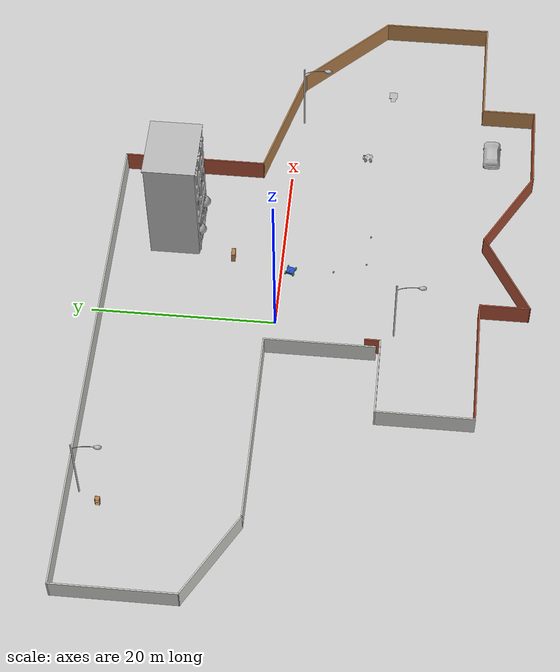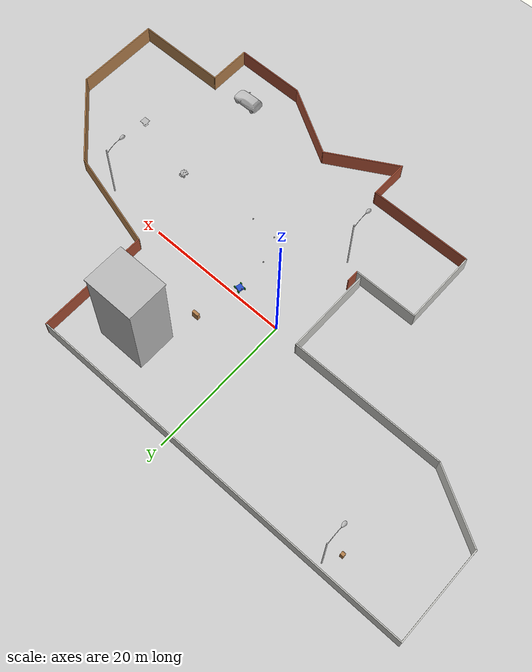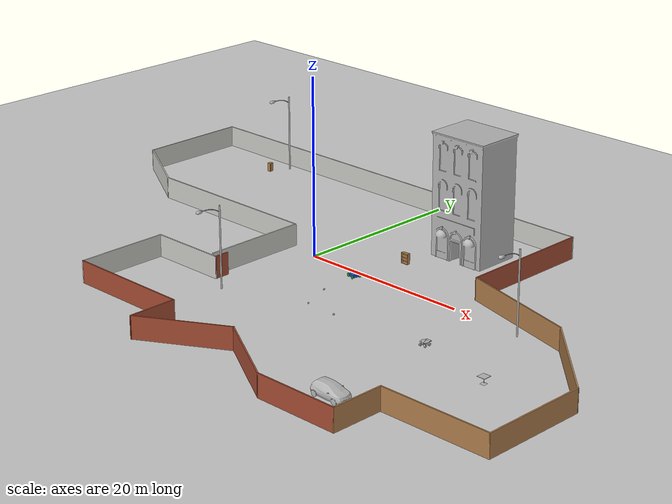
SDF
<sdf version="1.6">
 <world name="default">
  <model name="ground_plane">
   <static>1</static>
   <link name="link">
    <collision name="collision">
     <geometry><plane><normal>0 0 1</normal><size>100 100</size></plane></geometry>
     <surface><friction><ode><mu>100</mu><mu2>50</mu2></ode></friction></surface>
    </collision>
    <visual name="visual">
     <cast_shadows>0</cast_shadows>
     <geometry><plane><normal>0 0 1</normal><size>100 100</size></plane></geometry>
     <material>
      <script><uri>file://media/materials/scripts/gazebo.material</uri><name>Gazebo/Grey</name></script>
     </material>
    </visual>
   </link>
  </model>
  <light name="sun" type="directional">
   <pose>0 0 10 0 -0 0</pose>
   <diffuse>0.8 0.8 0.8 1</diffuse>
   <specular>0.2 0.2 0.2 1</specular>
   <attenuation>
    <range>1000</range>
    <constant>0.9</constant>
    <linear>0.01</linear>
    <quadratic>0.001</quadratic>
   </attenuation>
   <direction>-0.5 0.1 -0.9</direction>
  </light>
  <gravity>0 0 -9.8</gravity>
  <magnetic_field>6e-06 2.3e-05 -4.2e-05</magnetic_field>
  <atmosphere type="adiabatic"/>
  <physics name="default_physics" default="0" type="ode">
   <max_step_size>0.001</max_step_size>
   <real_time_factor>1</real_time_factor>
   <real_time_update_rate>1000</real_time_update_rate>
  </physics>
  <scene><ambient>0.4 0.4 0.4 1</ambient><background>0.7 0.7 0.7 1</background><shadows>1</shadows></scene>
  <spherical_coordinates>
   <surface_model>EARTH_WGS84</surface_model>
   <latitude_deg>0</latitude_deg>
   <longitude_deg>0</longitude_deg>
   <elevation>0</elevation>
   <heading_deg>0</heading_deg>
  </spherical_coordinates>
  <model name="my_robot">
   <link name="robot_footprint">
    <inertial>
     <pose>0.02764 0 0.034162 0 -0 0</pose>
     <mass>16.1</mass>
     <inertia>
      <ixx>0.456216</ixx>
      <ixy>0</ixy>
      <ixz>-0.2073</ixz>
      <iyy>0.624168</iyy>
      <iyz>0</iyz>
      <izz>0.367954</izz>
     </inertia>
    </inertial>
    <collision name="robot_footprint_fixed_joint_lump__chassis_collision_collision">
     <geometry><box><size>0.8 0.8 0.3</size></box></geometry>
    </collision>
    <collision name="robot_footprint_fixed_joint_lump__sensor_box_collision_collision_1">
     <pose>0.4 0 0.5 0 -0 0</pose>
     <geometry><box><size>0.1 0.1 0.1</size></box></geometry>
    </collision>
    <collision name="robot_footprint_fixed_joint_lump__camera_collision_collision_2">
     <pose>0.45 0 0.5 0 -0 0</pose>
     <geometry><box><size>0.05 0.05 0.05</size></box></geometry>
    </collision>
    <collision name="robot_footprint_fixed_joint_lump__hokuyo_collision_collision_3">
     <pose>0.4 0 0.55 0 -0 0</pose>
     <geometry><box><size>0.1 0.1 0.1</size></box></geometry>
    </collision>
    <visual name="robot_footprint_fixed_joint_lump__chassis_visual_visual">
     <geometry><box><size>0.8 0.8 0.3</size></box></geometry>
     <material>
      <script><name>Gazebo/Blue</name><uri>file://media/materials/scripts/gazebo.material</uri></script>
     </material>
    </visual>
    <visual name="robot_footprint_fixed_joint_lump__sensor_box_visual_visual_1">
     <pose>0.4 0 0.5 0 -0 0</pose>
     <geometry><box><size>0.1 0.1 0.1</size></box></geometry>
    </visual>
    <visual name="robot_footprint_fixed_joint_lump__camera_visual_visual_2">
     <pose>0.45 0 0.5 0 -0 0</pose>
     <geometry><box><size>0.05 0.05 0.05</size></box></geometry>
     <material>
      <script><name>Gazebo/Red</name><uri>file://media/materials/scripts/gazebo.material</uri></script>
     </material>
    </visual>
    <visual name="robot_footprint_fixed_joint_lump__hokuyo_visual_visual_3">
     <pose>0.4 0 0.55 0 -0 0</pose>
     <geometry>
      <mesh><scale>1 1 1</scale><uri>/home/workspace/catkin_ws/src/my_robot/meshes/hokuyo.dae</uri></mesh>
     </geometry>
     <material><script><uri>__default__</uri><name>__default__</name></script></material>
    </visual>
    <sensor name="camera1" type="camera">
     <update_rate>30</update_rate>
     <camera name="head">
      <horizontal_fov>1.39626</horizontal_fov>
      <image><width>800</width><height>800</height><format>R8G8B8</format></image>
      <clip><near>0.02</near><far>300</far></clip>
     </camera>
     <plugin name="camera_controller" filename="libgazebo_ros_camera.so">
      <alwaysOn>1</alwaysOn>
      <updateRate>0.0</updateRate>
      <cameraName>camera</cameraName>
      <imageTopicName>rgb/image_raw</imageTopicName>
      <cameraInfoTopicName>rgb/camera_info</cameraInfoTopicName>
      <frameName>camera</frameName>
      <hackBaseline>0.07</hackBaseline>
      <distortionK1>0.0</distortionK1>
      <distortionK2>0.0</distortionK2>
      <distortionK3>0.0</distortionK3>
      <distortionT1>0.0</distortionT1>
      <distortionT2>0.0</distortionT2>
      <robotNamespace>/</robotNamespace>
     </plugin>
     <pose>0.45 0 0.5 0 -0 0</pose>
    </sensor>
    <sensor name="head_hokuyo_sensor" type="ray">
     <visualize>0</visualize>
     <update_rate>40</update_rate>
     <ray>
      <scan>
       <horizontal>
        <samples>720</samples>
        <resolution>1</resolution>
        <min_angle>-1</min_angle>
        <max_angle>1</max_angle>
       </horizontal>
       <vertical><samples>1</samples><min_angle>0</min_angle><max_angle>0</max_angle></vertical>
      </scan>
      <range><min>0.1</min><max>30</max><resolution>0.01</resolution></range>
      <noise><type>gaussian</type><mean>0</mean><stddev>0.01</stddev></noise>
     </ray>
     <plugin name="gazebo_ros_head_hokuyo_controller" filename="libgazebo_ros_laser.so">
      <topicName>/scan</topicName>
      <frameName>hokuyo</frameName>
      <robotNamespace>/</robotNamespace>
     </plugin>
     <pose>0.4 0 0.55 0 -0 0</pose>
    </sensor>
   </link>
   <link name="front_left_wheel">
    <pose>0.4 0.45 0 0 -0 0</pose>
    <inertial>
     <mass>5</mass>
     <inertia><ixx>0.1</ixx><ixy>0</ixy><ixz>0</ixz><iyy>0.1</iyy><iyz>0</iyz><izz>0.1</izz></inertia>
    </inertial>
    <collision name="front_left_wheel_collision_collision">
     <pose>0 0 0 3.14159 1.57079 -1.57089</pose>
     <geometry><cylinder><length>0.1</length><radius>0.2</radius></cylinder></geometry>
    </collision>
    <visual name="front_left_wheel_visual_visual">
     <pose>0 0 0 3.14159 1.57079 -1.57089</pose>
     <geometry><cylinder><length>0.1</length><radius>0.2</radius></cylinder></geometry>
     <material>
      <script><name>Gazebo/Green</name><uri>file://media/materials/scripts/gazebo.material</uri></script>
     </material>
    </visual>
   </link>
   <joint name="front_left_wheel_hinge" type="revolute">
    <child>front_left_wheel</child>
    <parent>robot_footprint</parent>
    <axis>
     <xyz>0 1 0</xyz>
     <limit><lower>-1e+16</lower><upper>1e+16</upper></limit>
     <dynamics>
      <damping>1</damping>
      <friction>1</friction>
      <spring_reference>0</spring_reference>
      <spring_stiffness>0</spring_stiffness>
     </dynamics>
     <use_parent_model_frame>1</use_parent_model_frame>
    </axis>
   </joint>
   <link name="front_right_wheel">
    <pose>0.4 -0.45 0 0 -0 0</pose>
    <inertial>
     <mass>5</mass>
     <inertia><ixx>0.1</ixx><ixy>0</ixy><ixz>0</ixz><iyy>0.1</iyy><iyz>0</iyz><izz>0.1</izz></inertia>
    </inertial>
    <collision name="front_right_wheel_collision_collision">
     <pose>0 0 0 3.14159 1.57079 -1.57089</pose>
     <geometry><cylinder><length>0.1</length><radius>0.2</radius></cylinder></geometry>
    </collision>
    <visual name="front_right_wheel_visual_visual">
     <pose>0 0 0 3.14159 1.57079 -1.57089</pose>
     <geometry><cylinder><length>0.1</length><radius>0.2</radius></cylinder></geometry>
     <material>
      <script><name>Gazebo/Green</name><uri>file://media/materials/scripts/gazebo.material</uri></script>
     </material>
    </visual>
   </link>
   <joint name="front_right_wheel_hinge" type="revolute">
    <child>front_right_wheel</child>
    <parent>robot_footprint</parent>
    <axis>
     <xyz>0 1 0</xyz>
     <limit><lower>-1e+16</lower><upper>1e+16</upper></limit>
     <dynamics>
      <damping>1</damping>
      <friction>1</friction>
      <spring_reference>0</spring_reference>
      <spring_stiffness>0</spring_stiffness>
     </dynamics>
     <use_parent_model_frame>1</use_parent_model_frame>
    </axis>
   </joint>
   <link name="rear_left_wheel">
    <pose>-0.4 0.45 0 0 -0 0</pose>
    <inertial>
     <mass>5</mass>
     <inertia><ixx>0.1</ixx><ixy>0</ixy><ixz>0</ixz><iyy>0.1</iyy><iyz>0</iyz><izz>0.1</izz></inertia>
    </inertial>
    <collision name="rear_left_wheel_collision_collision">
     <pose>0 0 0 3.14159 1.57079 -1.57089</pose>
     <geometry><cylinder><length>0.1</length><radius>0.2</radius></cylinder></geometry>
    </collision>
    <visual name="rear_left_wheel_visual_visual">
     <pose>0 0 0 3.14159 1.57079 -1.57089</pose>
     <geometry><cylinder><length>0.1</length><radius>0.2</radius></cylinder></geometry>
     <material>
      <script><name>Gazebo/Green</name><uri>file://media/materials/scripts/gazebo.material</uri></script>
     </material>
    </visual>
   </link>
   <joint name="rear_left_wheel_hinge" type="revolute">
    <child>rear_left_wheel</child>
    <parent>robot_footprint</parent>
    <axis>
     <xyz>0 1 0</xyz>
     <limit><lower>-1e+16</lower><upper>1e+16</upper></limit>
     <dynamics>
      <damping>1</damping>
      <friction>1</friction>
      <spring_reference>0</spring_reference>
      <spring_stiffness>0</spring_stiffness>
     </dynamics>
     <use_parent_model_frame>1</use_parent_model_frame>
    </axis>
   </joint>
   <link name="rear_right_wheel">
    <pose>-0.4 -0.45 0 0 -0 0</pose>
    <inertial>
     <mass>5</mass>
     <inertia><ixx>0.1</ixx><ixy>0</ixy><ixz>0</ixz><iyy>0.1</iyy><iyz>0</iyz><izz>0.1</izz></inertia>
    </inertial>
    <collision name="rear_right_wheel_collision_collision">
     <pose>0 0 0 3.14159 1.57079 -1.57089</pose>
     <geometry><cylinder><length>0.1</length><radius>0.2</radius></cylinder></geometry>
    </collision>
    <visual name="rear_right_wheel_visual_visual">
     <pose>0 0 0 3.14159 1.57079 -1.57089</pose>
     <geometry><cylinder><length>0.1</length><radius>0.2</radius></cylinder></geometry>
     <material>
      <script><name>Gazebo/Green</name><uri>file://media/materials/scripts/gazebo.material</uri></script>
     </material>
    </visual>
   </link>
   <joint name="rear_right_wheel_hinge" type="revolute">
    <child>rear_right_wheel</child>
    <parent>robot_footprint</parent>
    <axis>
     <xyz>0 1 0</xyz>
     <limit><lower>-1e+16</lower><upper>1e+16</upper></limit>
     <dynamics>
      <damping>1</damping>
      <friction>1</friction>
      <spring_reference>0</spring_reference>
      <spring_stiffness>0</spring_stiffness>
     </dynamics>
     <use_parent_model_frame>1</use_parent_model_frame>
    </axis>
   </joint>
   <static>0</static>
   <plugin name="skid_steer_drive_controller" filename="libgazebo_ros_skid_steer_drive.so">
    <updateRate>10.0</updateRate>
    <robotNamespace>/</robotNamespace>
    <leftFrontJoint>front_left_wheel_hinge</leftFrontJoint>
    <rightFrontJoint>front_right_wheel_hinge</rightFrontJoint>
    <leftRearJoint>rear_left_wheel_hinge</leftRearJoint>
    <rightRearJoint>rear_right_wheel_hinge</rightRearJoint>
    <wheelSeparation>0.9</wheelSeparation>
    <wheelDiameter>0.4</wheelDiameter>
    <robotBaseFrame>robot_footprint</robotBaseFrame>
    <torque>100</torque>
    <topicName>cmd_vel</topicName>
    <broadcastTF>0</broadcastTF>
   </plugin>
   <pose>6.99353 -1.03089 0.200003 1e-06 -1e-06 2.88128</pose>
  </model>
  <model name="model1">
   <model name="Untitled">
    <pose>-6.69838 -1.37299 0 0 -0 0</pose>
    <link name="Wall_0">
     <collision name="Wall_0_Collision">
      <geometry><box><size>1.75 0.15 2.5</size></box></geometry>
      <pose>0 0 1.25 0 -0 0</pose>
     </collision>
     <visual name="Wall_0_Visual">
      <pose>0 0 1.25 0 -0 0</pose>
      <geometry><box><size>1.75 0.15 2.5</size></box></geometry>
      <material>
       <script><uri>file://media/materials/scripts/gazebo.material</uri><name>Gazebo/Bricks</name></script>
       <ambient>1 1 1 1</ambient>
      </material>
      <meta><layer>0</layer></meta>
     </visual>
     <pose>-7.2256 -6.50411 0 0 -0 -1.5708</pose>
    </link>
    <link name="Wall_1">
     <collision name="Wall_1_Collision">
      <geometry><box><size>9 0.15 2.5</size></box></geometry>
      <pose>0 0 1.25 0 -0 0</pose>
     </collision>
     <visual name="Wall_1_Visual">
      <pose>0 0 1.25 0 -0 0</pose>
      <geometry><box><size>9 0.15 2.5</size></box></geometry>
      <material>
       <script><uri>file://media/materials/scripts/gazebo.material</uri><name>Gazebo/CeilingTiled</name></script>
       <ambient>1 0.764706 0.305882 1</ambient>
      </material>
      <meta><layer>0</layer></meta>
     </visual>
     <pose>-11.6506 -7.30411 0 0 -0 3.14159</pose>
    </link>
    <link name="Wall_10">
     <collision name="Wall_10_Collision">
      <geometry><box><size>12 0.15 2.5</size></box></geometry>
      <pose>0 0 1.25 0 -0 0</pose>
     </collision>
     <visual name="Wall_10_Visual">
      <pose>0 0 1.25 0 -0 0</pose>
      <geometry><box><size>12 0.15 2.5</size></box></geometry>
      <material>
       <script><uri>file://media/materials/scripts/gazebo.material</uri><name>Gazebo/Wood</name></script>
       <ambient>1 1 1 1</ambient>
      </material>
      <meta><layer>0</layer></meta>
     </visual>
     <pose>38.4011 -11.2291 0 0 -0 1.5708</pose>
    </link>
    <link name="Wall_11">
     <collision name="Wall_11_Collision">
      <geometry><box><size>13 0.15 2.5</size></box></geometry>
      <pose>0 0 1.25 0 -0 0</pose>
     </collision>
     <visual name="Wall_11_Visual">
      <pose>0 0 1.25 0 -0 0</pose>
      <geometry><box><size>13 0.15 2.5</size></box></geometry>
      <material>
       <script><uri>file://media/materials/scripts/gazebo.material</uri><name>Gazebo/Wood</name></script>
       <ambient>1 1 1 1</ambient>
      </material>
      <meta><layer>0</layer></meta>
     </visual>
     <pose>33.858 -0.760948 0 0 -0 2.35619</pose>
    </link>
    <link name="Wall_12">
     <collision name="Wall_12_Collision">
      <geometry><box><size>14.25 0.15 2.5</size></box></geometry>
      <pose>0 0 1.25 0 -0 0</pose>
     </collision>
     <visual name="Wall_12_Visual">
      <pose>0 0 1.25 0 -0 0</pose>
      <geometry><box><size>14.25 0.15 2.5</size></box></geometry>
      <material>
       <script><uri>file://media/materials/scripts/gazebo.material</uri><name>Gazebo/Wood</name></script>
       <ambient>1 1 1 1</ambient>
      </material>
      <meta><layer>0</layer></meta>
     </visual>
     <pose>22.505 5.60689 0 0 -0 2.87979</pose>
    </link>
    <link name="Wall_13">
     <collision name="Wall_13_Collision">
      <geometry><box><size>15.75 0.15 2.5</size></box></geometry>
      <pose>0 0 1.25 0 -0 0</pose>
     </collision>
     <visual name="Wall_13_Visual">
      <pose>0 0 1.25 0 -0 0</pose>
      <geometry><box><size>15.75 0.15 2.5</size></box></geometry>
      <material>
       <script><uri>file://media/materials/scripts/gazebo.material</uri><name>Gazebo/Bricks</name></script>
       <ambient>1 1 1 1</ambient>
      </material>
      <meta><layer>0</layer></meta>
     </visual>
     <pose>15.6953 15.2316 0 0 -0 1.5708</pose>
    </link>
    <link name="Wall_14">
     <collision name="Wall_14_Collision">
      <geometry><box><size>54.25 0.15 2.5</size></box></geometry>
      <pose>0 0 1.25 0 -0 0</pose>
     </collision>
     <visual name="Wall_14_Visual">
      <pose>0 0 1.25 0 -0 0</pose>
      <geometry><box><size>54.25 0.15 2.5</size></box></geometry>
      <material>
       <script><uri>file://media/materials/scripts/gazebo.material</uri><name>Gazebo/CeilingTiled</name></script>
       <ambient>1 0.764706 0.305882 1</ambient>
      </material>
      <meta><layer>0</layer></meta>
     </visual>
     <pose>-11.3547 23.0316 0 0 -0 3.14159</pose>
    </link>
    <link name="Wall_15">
     <collision name="Wall_15_Collision">
      <geometry><box><size>13 0.15 2.5</size></box></geometry>
      <pose>0 0 1.25 0 -0 0</pose>
     </collision>
     <visual name="Wall_15_Visual">
      <pose>0 0 1.25 0 -0 0</pose>
      <geometry><box><size>13 0.15 2.5</size></box></geometry>
      <material>
       <script><uri>file://media/materials/scripts/gazebo.material</uri><name>Gazebo/CeilingTiled</name></script>
       <ambient>1 0.764706 0.305882 1</ambient>
      </material>
      <meta><layer>0</layer></meta>
     </visual>
     <pose>-38.4047 16.6066 0 0 -0 -1.5708</pose>
    </link>
    <link name="Wall_16">
     <collision name="Wall_16_Collision">
      <geometry><box><size>10.5 0.15 2.5</size></box></geometry>
      <pose>0 0 1.25 0 -0 0</pose>
     </collision>
     <visual name="Wall_16_Visual">
      <pose>0 0 1.25 0 -0 0</pose>
      <geometry><box><size>10.5 0.15 2.5</size></box></geometry>
      <material>
       <script><uri>file://media/materials/scripts/gazebo.material</uri><name>Gazebo/CeilingTiled</name></script>
       <ambient>1 0.764706 0.305882 1</ambient>
      </material>
      <meta><layer>0</layer></meta>
     </visual>
     <pose>-33.9231 7.59406 0 0 -0 -0.523599</pose>
    </link>
    <link name="Wall_17">
     <collision name="Wall_17_Collision">
      <geometry><box><size>21.5 0.15 2.5</size></box></geometry>
      <pose>0 0 1.25 0 -0 0</pose>
     </collision>
     <visual name="Wall_17_Visual">
      <pose>0 0 1.25 0 -0 0</pose>
      <geometry><box><size>21.5 0.15 2.5</size></box></geometry>
      <material>
       <script><uri>file://media/materials/scripts/gazebo.material</uri><name>Gazebo/CeilingTiled</name></script>
       <ambient>1 0.764706 0.305882 1</ambient>
      </material>
      <meta><layer>0</layer></meta>
     </visual>
     <pose>-18.7664 5.00656 0 0 -0 0</pose>
    </link>
    <link name="Wall_18">
     <collision name="Wall_18_Collision">
      <geometry><box><size>12 0.15 2.5</size></box></geometry>
      <pose>0 0 1.25 0 -0 0</pose>
     </collision>
     <visual name="Wall_18_Visual">
      <pose>0 0 1.25 0 -0 0</pose>
      <geometry><box><size>12 0.15 2.5</size></box></geometry>
      <material>
       <script><uri>file://media/materials/scripts/gazebo.material</uri><name>Gazebo/CeilingTiled</name></script>
       <ambient>1 0.764706 0.305882 1</ambient>
      </material>
      <meta><layer>0</layer></meta>
     </visual>
     <pose>-8.09139 -0.918439 0 0 -0 -1.5708</pose>
    </link>
    <link name="Wall_2">
     <collision name="Wall_2_Collision">
      <geometry><box><size>10.5 0.15 2.5</size></box></geometry>
      <pose>0 0 1.25 0 -0 0</pose>
     </collision>
     <visual name="Wall_2_Visual">
      <pose>0 0 1.25 0 -0 0</pose>
      <geometry><box><size>10.5 0.15 2.5</size></box></geometry>
      <material>
       <script><uri>file://media/materials/scripts/gazebo.material</uri><name>Gazebo/CeilingTiled</name></script>
       <ambient>1 0.764706 0.305882 1</ambient>
      </material>
      <meta><layer>0</layer></meta>
     </visual>
     <pose>-16.0756 -12.4791 0 0 -0 -1.5708</pose>
    </link>
    <link name="Wall_3">
     <collision name="Wall_3_Collision">
      <geometry><box><size>14.5 0.15 2.5</size></box></geometry>
      <pose>0 0 1.25 0 -0 0</pose>
     </collision>
     <visual name="Wall_3_Visual">
      <pose>0 0 1.25 0 -0 0</pose>
      <geometry><box><size>14.5 0.15 2.5</size></box></geometry>
      <material>
       <script><uri>file://media/materials/scripts/gazebo.material</uri><name>Gazebo/Bricks</name></script>
       <ambient>1 1 1 1</ambient>
      </material>
      <meta><layer>0</layer></meta>
     </visual>
     <pose>-8.9006 -17.6541 0 0 -0 0</pose>
    </link>
    <link name="Wall_4">
     <collision name="Wall_4_Collision">
      <geometry><box><size>5.5 0.15 2.5</size></box></geometry>
      <pose>0 0 1.25 0 -0 0</pose>
     </collision>
     <visual name="Wall_4_Visual">
      <pose>0 0 1.25 0 -0 0</pose>
      <geometry><box><size>5.5 0.15 2.5</size></box></geometry>
      <material>
       <script><uri>file://media/materials/scripts/gazebo.material</uri><name>Gazebo/Bricks</name></script>
       <ambient>1 1 1 1</ambient>
      </material>
      <meta><layer>0</layer></meta>
     </visual>
     <pose>-1.7256 -20.3291 0 0 -0 -1.5708</pose>
    </link>
    <link name="Wall_5">
     <collision name="Wall_5_Collision">
      <geometry><box><size>10.5 0.15 2.5</size></box></geometry>
      <pose>0 0 1.25 0 -0 0</pose>
     </collision>
     <visual name="Wall_5_Visual">
      <pose>0 0 1.25 0 -0 0</pose>
      <geometry><box><size>10.5 0.15 2.5</size></box></geometry>
      <material>
       <script><uri>file://media/materials/scripts/gazebo.material</uri><name>Gazebo/Bricks</name></script>
       <ambient>1 1 1 1</ambient>
      </material>
      <meta><layer>0</layer></meta>
     </visual>
     <pose>2.75608 -20.4166 0 0 -0 0.523599</pose>
    </link>
    <link name="Wall_6">
     <collision name="Wall_6_Collision">
      <geometry><box><size>10.5 0.15 2.5</size></box></geometry>
      <pose>0 0 1.25 0 -0 0</pose>
     </collision>
     <visual name="Wall_6_Visual">
      <pose>0 0 1.25 0 -0 0</pose>
      <geometry><box><size>10.5 0.15 2.5</size></box></geometry>
      <material>
       <script><uri>file://media/materials/scripts/gazebo.material</uri><name>Gazebo/Bricks</name></script>
       <ambient>1 1 1 1</ambient>
      </material>
      <meta><layer>0</layer></meta>
     </visual>
     <pose>11.7194 -20.4166 0 0 -0 -0.523599</pose>
    </link>
    <link name="Wall_7">
     <collision name="Wall_7_Collision">
      <geometry><box><size>9.75 0.15 2.5</size></box></geometry>
      <pose>0 0 1.25 0 -0 0</pose>
     </collision>
     <visual name="Wall_7_Visual">
      <pose>0 0 1.25 0 -0 0</pose>
      <geometry><box><size>9.75 0.15 2.5</size></box></geometry>
      <material>
       <script><uri>file://media/materials/scripts/gazebo.material</uri><name>Gazebo/Bricks</name></script>
       <ambient>1 0.764706 0.305882 1</ambient>
      </material>
      <meta><layer>0</layer></meta>
     </visual>
     <pose>21.0011 -23.0041 0 0 -0 0</pose>
    </link>
    <link name="Wall_8">
     <collision name="Wall_8_Collision">
      <geometry><box><size>6 0.15 2.5</size></box></geometry>
      <pose>0 0 1.25 0 -0 0</pose>
     </collision>
     <visual name="Wall_8_Visual">
      <pose>0 0 1.25 0 -0 0</pose>
      <geometry><box><size>6 0.15 2.5</size></box></geometry>
      <material>
       <script><uri>file://media/materials/scripts/gazebo.material</uri><name>Gazebo/Wood</name></script>
       <ambient>1 0.764706 0.305882 1</ambient>
      </material>
      <meta><layer>0</layer></meta>
     </visual>
     <pose>25.8011 -20.0791 0 0 -0 1.5708</pose>
    </link>
    <link name="Wall_9">
     <collision name="Wall_9_Collision">
      <geometry><box><size>12.75 0.15 2.5</size></box></geometry>
      <pose>0 0 1.25 0 -0 0</pose>
     </collision>
     <visual name="Wall_9_Visual">
      <pose>0 0 1.25 0 -0 0</pose>
      <geometry><box><size>12.75 0.15 2.5</size></box></geometry>
      <material>
       <script><uri>file://media/materials/scripts/gazebo.material</uri><name>Gazebo/Wood</name></script>
       <ambient>1 1 1 1</ambient>
      </material>
      <meta><layer>0</layer></meta>
     </visual>
     <pose>32.1011 -17.1541 0 0 -0 0</pose>
    </link>
    <static>1</static>
   </model>
   <model name="bookshelf">
    <static>1</static>
    <link name="link">
     <inertial><mass>1</mass></inertial>
     <collision name="back">
      <pose>0 0.005 0.6 0 -0 0</pose>
      <geometry><box><size>0.9 0.01 1.2</size></box></geometry>
     </collision>
     <visual name="visual1">
      <pose>0 0.005 0.6 0 -0 0</pose>
      <geometry><box><size>0.9 0.01 1.2</size></box></geometry>
      <material>
       <script><uri>file://media/materials/scripts/gazebo.material</uri><name>Gazebo/Wood</name></script>
      </material>
     </visual>
     <collision name="left_side">
      <pose>0.45 -0.195 0.6 0 -0 0</pose>
      <geometry><box><size>0.02 0.4 1.2</size></box></geometry>
     </collision>
     <visual name="visual2">
      <pose>0.45 -0.195 0.6 0 -0 0</pose>
      <geometry><box><size>0.02 0.4 1.2</size></box></geometry>
      <material>
       <script><uri>file://media/materials/scripts/gazebo.material</uri><name>Gazebo/Wood</name></script>
      </material>
     </visual>
     <collision name="right_side">
      <pose>-0.45 -0.195 0.6 0 -0 0</pose>
      <geometry><box><size>0.02 0.4 1.2</size></box></geometry>
     </collision>
     <visual name="visual3">
      <pose>-0.45 -0.195 0.6 0 -0 0</pose>
      <geometry><box><size>0.02 0.4 1.2</size></box></geometry>
      <material>
       <script><uri>file://media/materials/scripts/gazebo.material</uri><name>Gazebo/Wood</name></script>
      </material>
     </visual>
     <collision name="bottom">
      <pose>0 -0.195 0.03 0 -0 0</pose>
      <geometry><box><size>0.88 0.4 0.06</size></box></geometry>
     </collision>
     <visual name="visual4">
      <pose>0 -0.195 0.03 0 -0 0</pose>
      <geometry><box><size>0.88 0.4 0.06</size></box></geometry>
      <material>
       <script><uri>file://media/materials/scripts/gazebo.material</uri><name>Gazebo/Wood</name></script>
      </material>
     </visual>
     <collision name="top">
      <pose>0 -0.195 1.19 0 -0 0</pose>
      <geometry><box><size>0.88 0.4 0.02</size></box></geometry>
     </collision>
     <visual name="visual5">
      <pose>0 -0.195 1.19 0 -0 0</pose>
      <geometry><box><size>0.88 0.4 0.02</size></box></geometry>
      <material>
       <script><uri>file://media/materials/scripts/gazebo.material</uri><name>Gazebo/Wood</name></script>
      </material>
     </visual>
     <collision name="low_shelf">
      <pose>0 -0.195 0.43 0 -0 0</pose>
      <geometry><box><size>0.88 0.4 0.02</size></box></geometry>
     </collision>
     <visual name="visual6">
      <pose>0 -0.195 0.43 0 -0 0</pose>
      <geometry><box><size>0.88 0.4 0.02</size></box></geometry>
      <material>
       <script><uri>file://media/materials/scripts/gazebo.material</uri><name>Gazebo/Wood</name></script>
      </material>
     </visual>
     <collision name="high_shelf">
      <pose>0 -0.195 0.8 0 -0 0</pose>
      <geometry><box><size>0.88 0.4 0.02</size></box></geometry>
     </collision>
     <visual name="visual7">
      <pose>0 -0.195 0.8 0 -0 0</pose>
      <geometry><box><size>0.88 0.4 0.02</size></box></geometry>
      <material>
       <script><uri>file://media/materials/scripts/gazebo.material</uri><name>Gazebo/Wood</name></script>
      </material>
     </visual>
    </link>
    <pose>-2.7321 8.40925 0 0 -0 0</pose>
   </model>
   <model name="cabinet">
    <static>1</static>
    <link name="cabinet_bottom_plate">
     <inertial>
      <pose>0 0 -1 0 -0 0</pose>
      <inertia><ixx>2.05</ixx><ixy>0</ixy><ixz>0</ixz><iyy>2.05</iyy><iyz>0</iyz><izz>2.05</izz></inertia>
      <mass>25</mass>
     </inertial>
     <collision name="cabinet_bottom_plate_geom">
      <pose>0 0 0.01 0 -0 0</pose>
      <geometry><box><size>0.45 0.45 0.02</size></box></geometry>
     </collision>
     <visual name="cabinet_bottom_plate_geom_visual">
      <pose>0 0 0.01 0 -0 0</pose>
      <geometry><box><size>0.45 0.45 0.02</size></box></geometry>
      <material>
       <script><uri>file://media/materials/scripts/gazebo.material</uri><name>Gazebo/Wood</name></script>
      </material>
     </visual>
     <collision name="cabinet_bottom_plate_geom_cabinet_back_plate">
      <pose>0.235 0 0.51 0 -0 0</pose>
      <geometry><box><size>0.02 0.45 1.02</size></box></geometry>
     </collision>
     <visual name="cabinet_bottom_plate_geom_cabinet_back_plate_visual">
      <pose>0.235 0 0.51 0 -0 0</pose>
      <geometry><box><size>0.02 0.45 1.02</size></box></geometry>
      <material>
       <script><uri>file://media/materials/scripts/gazebo.material</uri><name>Gazebo/Wood</name></script>
      </material>
     </visual>
     <collision name="cabinet_bottom_plate_geom_cabinet_left_plate">
      <pose>0 0.235 0.51 0 -0 0</pose>
      <geometry><box><size>0.45 0.02 1.02</size></box></geometry>
     </collision>
     <visual name="cabinet_bottom_plate_geom_cabinet_left_plate_visual">
      <pose>0 0.235 0.51 0 -0 0</pose>
      <geometry><box><size>0.45 0.02 1.02</size></box></geometry>
      <material>
       <script><uri>file://media/materials/scripts/gazebo.material</uri><name>Gazebo/Wood</name></script>
      </material>
     </visual>
     <collision name="cabinet_bottom_plate_geom_cabinet_middle_plate">
      <pose>0 0 0.51 0 -0 0</pose>
      <geometry><box><size>0.45 0.45 0.02</size></box></geometry>
     </collision>
     <visual name="cabinet_bottom_plate_geom_cabinet_middle_plate_visual">
      <pose>0 0 0.51 0 -0 0</pose>
      <geometry><box><size>0.45 0.45 0.02</size></box></geometry>
      <material>
       <script><uri>file://media/materials/scripts/gazebo.material</uri><name>Gazebo/Wood</name></script>
      </material>
     </visual>
     <collision name="cabinet_bottom_plate_geom_cabinet_right_plate">
      <pose>0 -0.235 0.51 0 -0 0</pose>
      <geometry><box><size>0.45 0.02 1.02</size></box></geometry>
     </collision>
     <visual name="cabinet_bottom_plate_geom_cabinet_right_plate_visual">
      <pose>0 -0.235 0.51 0 -0 0</pose>
      <geometry><box><size>0.45 0.02 1.02</size></box></geometry>
      <material>
       <script><uri>file://media/materials/scripts/gazebo.material</uri><name>Gazebo/Wood</name></script>
      </material>
     </visual>
     <collision name="cabinet_bottom_plate_geom_cabinet_top_plate">
      <pose>0 0 1.01 0 -0 0</pose>
      <geometry><box><size>0.45 0.45 0.02</size></box></geometry>
     </collision>
     <visual name="cabinet_bottom_plate_geom_cabinet_top_plate_visual">
      <pose>0 0 1.01 0 -0 0</pose>
      <geometry><box><size>0.45 0.45 0.02</size></box></geometry>
      <material>
       <script><uri>file://media/materials/scripts/gazebo.material</uri><name>Gazebo/Wood</name></script>
      </material>
     </visual>
    </link>
    <pose>-34.6067 18.4549 0 0 -0 0</pose>
   </model>
   <model name="cafe_table">
    <static>1</static>
    <link name="link">
     <collision name="surface">
      <pose>0 0 0.755 0 -0 0</pose>
      <geometry><box><size>0.913 0.913 0.04</size></box></geometry>
     </collision>
     <collision name="column">
      <pose>0 0 0.37 0 -0 0</pose>
      <geometry><box><size>0.042 0.042 0.74</size></box></geometry>
     </collision>
     <collision name="base">
      <pose>0 0 0.02 0 -0 0</pose>
      <geometry><box><size>0.56 0.56 0.04</size></box></geometry>
     </collision>
     <visual name="visual">
      <geometry><mesh><uri>model://cafe_table/meshes/cafe_table.dae</uri></mesh></geometry>
     </visual>
    </link>
    <pose>22.0309 -7.94622 0 0 -0 0</pose>
   </model>
   <model name="hatchback_red">
    <static>1</static>
    <link name="link">
     <collision name="collision">
      <pose>0 0 0 0 -0 1.5708</pose>
      <geometry>
       <mesh><scale>0.0254 0.0254 0.0254</scale><uri>model://hatchback_red/meshes/hatchback.obj</uri></mesh>
      </geometry>
     </collision>
     <visual name="visual">
      <pose>0 0 0 0 -0 1.5708</pose>
      <geometry>
       <mesh><scale>0.0254 0.0254 0.0254</scale><uri>model://hatchback_red/meshes/hatchback.obj</uri></mesh>
      </geometry>
     </visual>
    </link>
    <pose>13.8173 -19.7571 0 0 -0 0</pose>
   </model>
   <model name="law_office">
    <static>1</static>
    <link name="link">
     <collision name="collision">
      <pose>0 0 6.96244 0 -0 0</pose>
      <geometry><box><size>6.84401 5.43165 13.9249</size></box></geometry>
     </collision>
     <visual name="visual">
      <geometry><mesh><uri>model://law_office/meshes/law_office.dae</uri></mesh></geometry>
     </visual>
    </link>
    <pose>0.909365 14.7617 0 0 -0 0</pose>
   </model>
   <model name="mars_rover">
    <static>1</static>
    <link name="link">
     <collision name="solar_panel_collision">
      <pose>0 -0.06945 0.47293 0 -0 0</pose>
      <geometry><box><size>0.87974 0.8821 0.02602</size></box></geometry>
     </collision>
     <collision name="chassis_collision">
      <pose>0 -0.05 0.31475 0 -0 0</pose>
      <geometry><box><size>0.49522 0.67401 0.28915</size></box></geometry>
     </collision>
     <collision name="rear_left_bumper_collision">
      <pose>0.30107 0.3835 0.38976 0 -0 0</pose>
      <geometry><box><size>0.04442 0.38897 0.07918</size></box></geometry>
     </collision>
     <collision name="rear_right_bumper_collision">
      <pose>-0.30107 0.3835 0.38976 0 -0 0</pose>
      <geometry><box><size>0.04442 0.38897 0.07918</size></box></geometry>
     </collision>
     <collision name="rear_bumper_collision">
      <pose>0 0.59414 0.38976 0 -0 0</pose>
      <geometry><box><size>0.56656 0.04442 0.07918</size></box></geometry>
     </collision>
     <collision name="bin_back_panel_collision">
      <pose>0 0.47 0.32114 0.69137 -0 0</pose>
      <geometry><box><size>0.43774 0.212366 0.05173</size></box></geometry>
     </collision>
     <collision name="bin_left_panel_collision1">
      <pose>0.22615 0.32897 0.33193 0 -0 0</pose>
      <geometry><box><size>0.01116 0.19338 0.16304</size></box></geometry>
     </collision>
     <collision name="bin_left_panel_collision2">
      <pose>0.22615 0.471 0.39308 0 -0 0</pose>
      <geometry><box><size>0.01116 0.15 0.04</size></box></geometry>
     </collision>
     <collision name="bin_left_panel_collision3">
      <pose>0.22615 0.45 0.35308 0 -0 0</pose>
      <geometry><box><size>0.01116 0.15 0.04</size></box></geometry>
     </collision>
     <collision name="bin_left_panel_collision4">
      <pose>0.22615 0.39308 0.31308 0 -0 0</pose>
      <geometry><box><size>0.01116 0.15 0.04</size></box></geometry>
     </collision>
     <collision name="bin_right_panel_collision1">
      <pose>-0.22615 0.32897 0.33193 0 -0 0</pose>
      <geometry><box><size>0.01116 0.19338 0.16304</size></box></geometry>
     </collision>
     <collision name="bin_right_panel_collision2">
      <pose>-0.22615 0.471 0.39308 0 -0 0</pose>
      <geometry><box><size>0.01116 0.15 0.04</size></box></geometry>
     </collision>
     <collision name="bin_right_panel_collision3">
      <pose>-0.22615 0.45 0.35308 0 -0 0</pose>
      <geometry><box><size>0.01116 0.15 0.04</size></box></geometry>
     </collision>
     <collision name="bin_right_panel_collision4">
      <pose>-0.22615 0.39308 0.31308 0 -0 0</pose>
      <geometry><box><size>0.01116 0.15 0.04</size></box></geometry>
     </collision>
     <collision name="bin_front_panel_collision">
      <pose>0 0.30047 0.32114 2.26207 -0 0</pose>
      <geometry><box><size>0.43774 0.212366 0.05173</size></box></geometry>
     </collision>
     <collision name="front_left_wheel_collision">
      <pose>0.31103 -0.32115 0.1358 1.5707 0 1.5707</pose>
      <geometry><cylinder><radius>0.1358</radius><length>0.1641</length></cylinder></geometry>
     </collision>
     <collision name="front_right_wheel_collision">
      <pose>-0.31103 -0.32115 0.1358 1.5707 0 1.5707</pose>
      <geometry><cylinder><radius>0.1358</radius><length>0.1641</length></cylinder></geometry>
     </collision>
     <collision name="rear_left_wheel_collision">
      <pose>0.31103 0.28049 0.1358 1.5707 0 1.5707</pose>
      <geometry><cylinder><radius>0.1358</radius><length>0.1641</length></cylinder></geometry>
     </collision>
     <collision name="rear_right_wheel_collision">
      <pose>-0.31103 0.28049 0.1358 1.5707 0 1.5707</pose>
      <geometry><cylinder><radius>0.1358</radius><length>0.1641</length></cylinder></geometry>
     </collision>
     <visual name="visual">
      <geometry><mesh><uri>model://mars_rover/meshes/rover.dae</uri></mesh></geometry>
     </visual>
    </link>
    <pose>12.6714 -5.62521 0 0 -0 0</pose>
   </model>
   <model name="white_ball">
    <link name="link_0">
     <inertial>
      <mass>1</mass>
      <inertia><ixx>0.1</ixx><ixy>0</ixy><ixz>0</ixz><iyy>0.1</iyy><iyz>0</iyz><izz>0.1</izz></inertia>
     </inertial>
     <visual name="visual">
      <pose>0 0 0.1 0 -0 0</pose>
      <geometry><sphere><radius>0.1</radius></sphere></geometry>
      <material>
       <lighting>1</lighting>
       <script><uri>file://media/materials/scripts/gazebo.material</uri><name>Gazebo/Grey</name></script>
       <shader type="pixel"><normal_map>__default__</normal_map></shader>
       <ambient>1 1 1 1</ambient>
       <diffuse>1 1 1 1</diffuse>
       <specular>1 1 1 1</specular>
       <emissive>1 1 1 1</emissive>
      </material>
     </visual>
     <collision name="collision">
      <pose>0 0 0.1 0 -0 0</pose>
      <geometry><sphere><radius>0.1</radius></sphere></geometry>
      <surface>
       <friction>
        <ode><mu>1</mu><mu2>1</mu2><fdir1>0 0 0</fdir1><slip1>0</slip1><slip2>0</slip2></ode>
        <torsional>
         <coefficient>1</coefficient>
         <patch_radius>0</patch_radius>
         <surface_radius>0</surface_radius>
         <use_patch_radius>1</use_patch_radius>
         <ode><slip>0</slip></ode>
        </torsional>
       </friction>
       <bounce><restitution_coefficient>0</restitution_coefficient><threshold>1e+06</threshold></bounce>
       <contact>
        <collide_without_contact>0</collide_without_contact>
        <collide_without_contact_bitmask>1</collide_without_contact_bitmask>
        <collide_bitmask>1</collide_bitmask>
        <ode>
         <soft_cfm>0</soft_cfm>
         <soft_erp>0.2</soft_erp>
         <kp>1e+13</kp>
         <kd>1</kd>
         <max_vel>0.01</max_vel>
         <min_depth>0</min_depth>
        </ode>
        <bullet>
         <split_impulse>1</split_impulse>
         <split_impulse_penetration_threshold>-0.01</split_impulse_penetration_threshold>
         <soft_cfm>0</soft_cfm>
         <soft_erp>0.2</soft_erp>
         <kp>1e+13</kp>
         <kd>1</kd>
        </bullet>
       </contact>
      </surface>
     </collision>
    </link>
    <static>0</static>
    <pose>-3.73473 -2.94213 0 0 -0 0</pose>
   </model>
   <static>0</static>
   <pose>11.0329 -2.786 0 0 -0 0</pose>
  </model>
  <model name="model1_0">
   <model name="Lamp Post">
    <static>1</static>
    <link name="link">
     <collision name="collision">
      <geometry><mesh><uri>model://lamp_post/meshes/lamp_post.dae</uri><scale>3 3 3</scale></mesh></geometry>
     </collision>
     <visual name="visual">
      <geometry><mesh><uri>model://lamp_post/meshes/lamp_post.dae</uri><scale>3 3 3</scale></mesh></geometry>
     </visual>
    </link>
    <pose>26.7087 -2.06622 0 0 -0 0</pose>
   </model>
   <model name="Lamp Post_0">
    <static>1</static>
    <link name="link">
     <collision name="collision">
      <geometry><mesh><uri>model://lamp_post/meshes/lamp_post.dae</uri><scale>3 3 3</scale></mesh></geometry>
     </collision>
     <visual name="visual">
      <geometry><mesh><uri>model://lamp_post/meshes/lamp_post.dae</uri><scale>3 3 3</scale></mesh></geometry>
     </visual>
    </link>
    <pose>-24.3052 16.3338 0 0 -0 0</pose>
   </model>
   <model name="Lamp Post_1">
    <static>1</static>
    <link name="link">
     <collision name="collision">
      <geometry><mesh><uri>model://lamp_post/meshes/lamp_post.dae</uri><scale>3 3 3</scale></mesh></geometry>
     </collision>
     <visual name="visual">
      <geometry><mesh><uri>model://lamp_post/meshes/lamp_post.dae</uri><scale>3 3 3</scale></mesh></geometry>
     </visual>
    </link>
    <pose>-2.40339 -14.2675 0 0 -0 0</pose>
   </model>
   <static>0</static>
   <pose>1.91815 1.41719 0 0 -0 0</pose>
  </model>
  <model name="white_ball_chaser">
   <model name="my_ball">
    <link name="link_0">
     <inertial>
      <mass>1</mass>
      <inertia><ixx>0.1</ixx><ixy>0</ixy><ixz>0</ixz><iyy>0.1</iyy><iyz>0</iyz><izz>0.1</izz></inertia>
     </inertial>
     <visual name="visual">
      <pose>0 0 0.1 0 -0 0</pose>
      <geometry><sphere><radius>0.1</radius></sphere></geometry>
      <material>
       <lighting>1</lighting>
       <script><uri>file://media/materials/scripts/gazebo.material</uri><name>Gazebo/Grey</name></script>
       <shader type="pixel"><normal_map>__default__</normal_map></shader>
       <ambient>1 1 1 1</ambient>
       <diffuse>1 1 1 1</diffuse>
       <specular>1 1 1 1</specular>
       <emissive>1 1 1 1</emissive>
      </material>
     </visual>
     <collision name="collision">
      <pose>0 0 0.1 0 -0 0</pose>
      <geometry><sphere><radius>0.1</radius></sphere></geometry>
      <surface>
       <friction>
        <ode><mu>1</mu><mu2>1</mu2><fdir1>0 0 0</fdir1><slip1>0</slip1><slip2>0</slip2></ode>
        <torsional>
         <coefficient>1</coefficient>
         <patch_radius>0</patch_radius>
         <surface_radius>0</surface_radius>
         <use_patch_radius>1</use_patch_radius>
         <ode><slip>0</slip></ode>
        </torsional>
       </friction>
       <bounce><restitution_coefficient>0</restitution_coefficient><threshold>1e+06</threshold></bounce>
       <contact>
        <collide_without_contact>0</collide_without_contact>
        <collide_without_contact_bitmask>1</collide_without_contact_bitmask>
        <collide_bitmask>1</collide_bitmask>
        <ode>
         <soft_cfm>0</soft_cfm>
         <soft_erp>0.2</soft_erp>
         <kp>1e+13</kp>
         <kd>1</kd>
         <max_vel>0.01</max_vel>
         <min_depth>0</min_depth>
        </ode>
        <bullet>
         <split_impulse>1</split_impulse>
         <split_impulse_penetration_threshold>-0.01</split_impulse_penetration_threshold>
         <soft_cfm>0</soft_cfm>
         <soft_erp>0.2</soft_erp>
         <kp>1e+13</kp>
         <kd>1</kd>
        </bullet>
       </contact>
      </surface>
     </collision>
    </link>
    <static>0</static>
    <pose>-1e-06 3e-06 0 0 -0 0</pose>
   </model>
   <static>0</static>
   <pose>12.4536 -9.51039 0 0 -0 0</pose>
  </model>
  <model name="white_ball_0">
   <link name="link_0">
    <inertial>
     <mass>1</mass>
     <inertia><ixx>0.1</ixx><ixy>0</ixy><ixz>0</ixz><iyy>0.1</iyy><iyz>0</iyz><izz>0.1</izz></inertia>
    </inertial>
    <visual name="visual">
     <pose>0 0 0.1 0 -0 0</pose>
     <geometry><sphere><radius>0.1</radius></sphere></geometry>
     <material>
      <lighting>1</lighting>
      <script><uri>file://media/materials/scripts/gazebo.material</uri><name>Gazebo/Grey</name></script>
      <shader type="pixel"><normal_map>__default__</normal_map></shader>
      <ambient>1 1 1 1</ambient>
      <diffuse>1 1 1 1</diffuse>
      <specular>1 1 1 1</specular>
      <emissive>1 1 1 1</emissive>
     </material>
    </visual>
    <collision name="collision">
     <pose>0 0 0.1 0 -0 0</pose>
     <geometry><sphere><radius>0.1</radius></sphere></geometry>
     <surface>
      <friction>
       <ode><mu>1</mu><mu2>1</mu2><fdir1>0 0 0</fdir1><slip1>0</slip1><slip2>0</slip2></ode>
       <torsional>
        <coefficient>1</coefficient>
        <patch_radius>0</patch_radius>
        <surface_radius>0</surface_radius>
        <use_patch_radius>1</use_patch_radius>
        <ode><slip>0</slip></ode>
       </torsional>
      </friction>
      <bounce><restitution_coefficient>0</restitution_coefficient><threshold>1e+06</threshold></bounce>
      <contact>
       <collide_without_contact>0</collide_without_contact>
       <collide_without_contact_bitmask>1</collide_without_contact_bitmask>
       <collide_bitmask>1</collide_bitmask>
       <ode>
        <soft_cfm>0</soft_cfm>
        <soft_erp>0.2</soft_erp>
        <kp>1e+13</kp>
        <kd>1</kd>
        <max_vel>0.01</max_vel>
        <min_depth>0</min_depth>
       </ode>
       <bullet>
        <split_impulse>1</split_impulse>
        <split_impulse_penetration_threshold>-0.01</split_impulse_penetration_threshold>
        <soft_cfm>0</soft_cfm>
        <soft_erp>0.2</soft_erp>
        <kp>1e+13</kp>
        <kd>1</kd>
       </bullet>
      </contact>
     </surface>
    </collision>
   </link>
   <static>0</static>
   <pose>8.64589 -9.28982 0 0 -0 0</pose>
  </model>
 </world>
</sdf>
